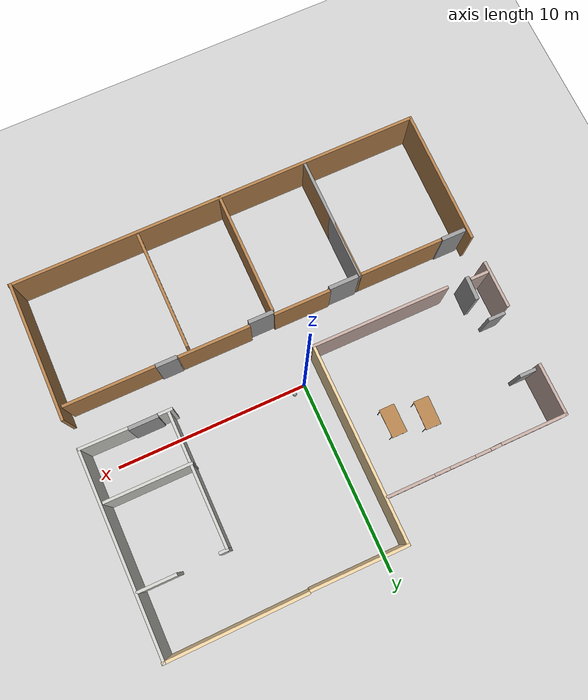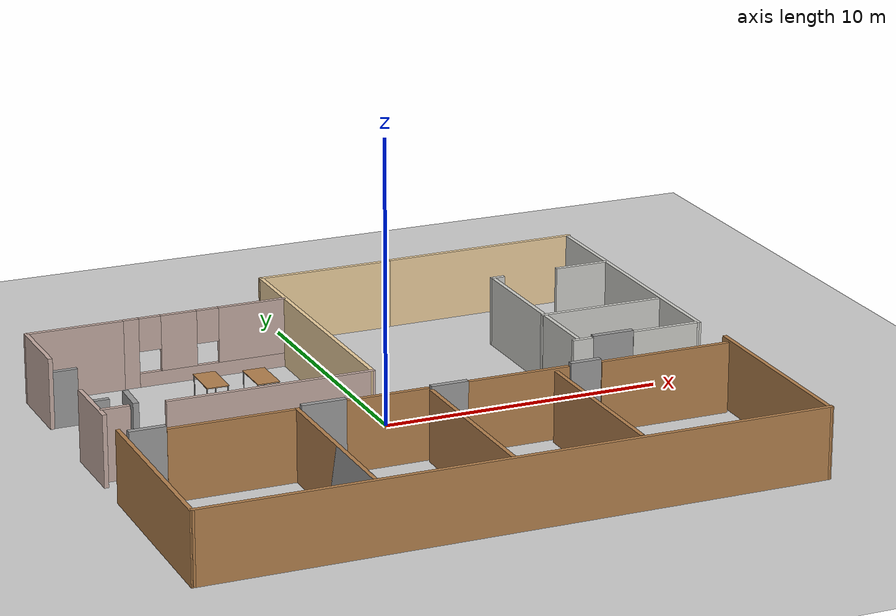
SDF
<sdf version="1.6">
 <world name="default">
  <model name="Building">
   <pose>0.405506 -0.396401 0 0 -0 0</pose>
   <link name="Door_12">
    <collision name="Door_12_Collision">
     <geometry><box><size>1.264 0.2 2.6</size></box></geometry>
     <pose>0 0 1.3 0 -0 0</pose>
    </collision>
    <visual name="Door_12_Visual">
     <pose>0 0 1.3 0 -0 0</pose>
     <geometry><box><size>1.264 0.2 2.6</size></box></geometry>
     <material>
      <script><uri>file://media/materials/scripts/gazebo.material</uri><name>Gazebo/Grey</name></script>
     </material>
    </visual>
    <pose>-9.9622 -3.0454 0 0 -0 0</pose>
   </link>
   <link name="Door_13">
    <collision name="Door_13_Collision">
     <geometry><box><size>1.224 0.2 2.6</size></box></geometry>
     <pose>0 0 1.3 0 -0 0</pose>
    </collision>
    <visual name="Door_13_Visual">
     <pose>0 0 1.3 0 -0 0</pose>
     <geometry><box><size>1.224 0.2 2.6</size></box></geometry>
     <material>
      <script><uri>file://media/materials/scripts/gazebo.material</uri><name>Gazebo/Grey</name></script>
     </material>
    </visual>
    <pose>-9.53741 -0.213505 0 0 0 -1.61176</pose>
   </link>
   <link name="Door_14">
    <collision name="Door_14_Collision">
     <geometry><box><size>0.9 0.17 2</size></box></geometry>
     <pose>0 0 1 0 -0 0</pose>
    </collision>
    <visual name="Door_14_Visual">
     <pose>0 0 1 0 -0 0</pose>
     <geometry><box><size>0.9 0.17 2</size></box></geometry>
     <material>
      <script><uri>file://media/materials/scripts/gazebo.material</uri><name>Gazebo/Grey</name></script>
     </material>
    </visual>
    <pose>-10.2656 4.56025 0 0 -0 0</pose>
   </link>
   <link name="Door_15">
    <collision name="Door_15_Collision">
     <geometry><box><size>0.9 0.17 2</size></box></geometry>
     <pose>0 0 1 0 -0 0</pose>
    </collision>
    <visual name="Door_15_Visual">
     <pose>0 0 1 0 -0 0</pose>
     <geometry><box><size>0.9 0.17 2</size></box></geometry>
     <material>
      <script><uri>file://media/materials/scripts/gazebo.material</uri><name>Gazebo/Grey</name></script>
     </material>
    </visual>
    <pose>-10.1847 1.44517 0 0 -0 0</pose>
   </link>
   <link name="Door_16">
    <collision name="Door_16_Collision">
     <geometry><box><size>1.507 0.2 2.55</size></box></geometry>
     <pose>0 0 1.275 0 -0 0</pose>
    </collision>
    <visual name="Door_16_Visual">
     <pose>0 0 1.275 0 -0 0</pose>
     <geometry><box><size>1.507 0.2 2.55</size></box></geometry>
     <material>
      <script><uri>file://media/materials/scripts/gazebo.material</uri><name>Gazebo/Grey</name></script>
     </material>
    </visual>
    <pose>7.4337 -0.698972 0 0 -0 0</pose>
   </link>
   <link name="Door_5">
    <collision name="Door_5_Collision">
     <geometry><box><size>1.102 0.2 2.6</size></box></geometry>
     <pose>0 0 1.3 0 -0 0</pose>
    </collision>
    <visual name="Door_5_Visual">
     <pose>0 0 1.3 0 -0 0</pose>
     <geometry><box><size>1.102 0.2 2.6</size></box></geometry>
     <material>
      <script><uri>file://media/materials/scripts/gazebo.material</uri><name>Gazebo/Grey</name></script>
     </material>
    </visual>
    <pose>5.33001 -2.92403 0 0 -0 0</pose>
   </link>
   <link name="Door_6">
    <collision name="Door_6_Collision">
     <geometry><box><size>1.30456 0.2 2.6</size></box></geometry>
     <pose>0 0 1.3 0 -0 0</pose>
    </collision>
    <visual name="Door_6_Visual">
     <pose>0 0 1.3 0 -0 0</pose>
     <geometry><box><size>1.30456 0.2 2.6</size></box></geometry>
     <material>
      <script><uri>file://media/materials/scripts/gazebo.material</uri><name>Gazebo/Grey</name></script>
     </material>
    </visual>
    <pose>0.353974 -3.08585 0 0 -0 0</pose>
   </link>
   <link name="Door_7">
    <collision name="Door_7_Collision">
     <geometry><box><size>1.54729 0.2 2.6</size></box></geometry>
     <pose>0 0 1.3 0 -0 0</pose>
    </collision>
    <visual name="Door_7_Visual">
     <pose>0 0 1.3 0 -0 0</pose>
     <geometry><box><size>1.54729 0.2 2.6</size></box></geometry>
     <material>
      <script><uri>file://media/materials/scripts/gazebo.material</uri><name>Gazebo/Grey</name></script>
     </material>
    </visual>
    <pose>-4.01523 -3.0454 0 0 -0 0</pose>
   </link>
   <link name="Wall_100">
    <collision name="Wall_100_Collision">
     <geometry><box><size>7 0.15 2.5</size></box></geometry>
     <pose>0 0 1.25 0 -0 0</pose>
    </collision>
    <visual name="Wall_100_Visual">
     <pose>0 0 1.25 0 -0 0</pose>
     <geometry><box><size>7 0.15 2.5</size></box></geometry>
     <material>
      <script><uri>file://media/materials/scripts/gazebo.material</uri><name>Gazebo/CeilingTiled</name></script>
      <ambient>1 1 1 1</ambient>
     </material>
     <meta><layer>0</layer></meta>
    </visual>
    <pose>6.16803 2.83366 0 0 0 -1.5708</pose>
   </link>
   <link name="Wall_107">
    <collision name="Wall_107_Collision">
     <geometry><box><size>4.75 0.15 2.5</size></box></geometry>
     <pose>0 0 1.25 0 -0 0</pose>
    </collision>
    <visual name="Wall_107_Visual">
     <pose>0 0 1.25 0 -0 0</pose>
     <geometry><box><size>4.75 0.15 2.5</size></box></geometry>
     <material>
      <script><uri>file://media/materials/scripts/gazebo.material</uri><name>Gazebo/Wood</name></script>
      <ambient>0.603922 0.4 0.298039 1</ambient>
     </material>
     <meta><layer>0</layer></meta>
    </visual>
    <pose>8.26901 -2.96448 0 0 -0 3.14159</pose>
   </link>
   <link name="Wall_109">
    <collision name="Wall_109_Collision">
     <geometry><box><size>3.75 0.15 2.5</size></box></geometry>
     <pose>0 0 1.25 0 -0 0</pose>
    </collision>
    <visual name="Wall_109_Visual">
     <pose>0 0 1.25 0 -0 0</pose>
     <geometry><box><size>3.75 0.15 2.5</size></box></geometry>
     <material>
      <script><uri>file://media/materials/scripts/gazebo.material</uri><name>Gazebo/Wood</name></script>
      <ambient>0.603922 0.4 0.298039 1</ambient>
     </material>
     <meta><layer>0</layer></meta>
    </visual>
    <pose>2.86976 -2.92403 0 0 -0 3.14159</pose>
   </link>
   <link name="Wall_114">
    <collision name="Wall_114_Collision">
     <geometry><box><size>3 0.15 2.5</size></box></geometry>
     <pose>0 0 1.25 0 -0 0</pose>
    </collision>
    <visual name="Wall_114_Visual">
     <pose>0 0 1.25 0 -0 0</pose>
     <geometry><box><size>3 0.15 2.5</size></box></geometry>
     <material>
      <script><uri>file://media/materials/scripts/gazebo.material</uri><name>Gazebo/Wood</name></script>
      <ambient>0.603922 0.4 0.298039 1</ambient>
     </material>
     <meta><layer>0</layer></meta>
    </visual>
    <pose>-1.779 -2.96448 0 0 -0 3.14159</pose>
   </link>
   <link name="Wall_116">
    <collision name="Wall_116_Collision">
     <geometry><box><size>4.5 0.15 2.5</size></box></geometry>
     <pose>0 0 1.25 0 -0 0</pose>
    </collision>
    <visual name="Wall_116_Visual">
     <pose>0 0 1.25 0 -0 0</pose>
     <geometry><box><size>4.5 0.15 2.5</size></box></geometry>
     <material>
      <script><uri>file://media/materials/scripts/gazebo.material</uri><name>Gazebo/Wood</name></script>
      <ambient>0.603922 0.4 0.298039 1</ambient>
     </material>
     <meta><layer>0</layer></meta>
    </visual>
    <pose>-7.08148 -3.07404 0 0 -0 3.14159</pose>
   </link>
   <link name="Wall_51">
    <collision name="Wall_51_Collision">
     <geometry><box><size>7.12896 0.15 2.5</size></box></geometry>
     <pose>0 0 1.25 0 -0 0</pose>
    </collision>
    <visual name="Wall_51_Visual">
     <pose>0 0 1.25 0 -0 0</pose>
     <geometry><box><size>7.12896 0.15 2.5</size></box></geometry>
     <material>
      <script><uri>file://media/materials/scripts/gazebo.material</uri><name>Gazebo/Wood</name></script>
      <ambient>0.603922 0.4 0.298039 1</ambient>
     </material>
     <meta><layer>0</layer></meta>
    </visual>
    <pose>-10.8 -6.10067 0 0 0 -1.58239</pose>
   </link>
   <link name="Wall_52">
    <collision name="Wall_52_Collision">
     <geometry><box><size>21.75 0.15 2.5</size></box></geometry>
     <pose>0 0 1.25 0 -0 0</pose>
    </collision>
    <visual name="Wall_52_Visual">
     <pose>0 0 1.25 0 -0 0</pose>
     <geometry><box><size>21.75 0.15 2.5</size></box></geometry>
     <material>
      <script><uri>file://media/materials/scripts/gazebo.material</uri><name>Gazebo/Wood</name></script>
      <ambient>0.603922 0.4 0.298039 1</ambient>
     </material>
     <meta><layer>0</layer></meta>
    </visual>
    <pose>1.3e-05 -9.58992 0 0 -0 0</pose>
   </link>
   <link name="Wall_53">
    <collision name="Wall_53_Collision">
     <geometry><box><size>7.33863 0.15 2.5</size></box></geometry>
     <pose>0 0 1.25 0 -0 0</pose>
    </collision>
    <visual name="Wall_53_Visual">
     <pose>0 0 1.25 0 -0 0</pose>
     <geometry><box><size>7.33863 0.15 2.5</size></box></geometry>
     <material>
      <script><uri>file://media/materials/scripts/gazebo.material</uri><name>Gazebo/Wood</name></script>
      <ambient>0.603922 0.4 0.298039 1</ambient>
     </material>
     <meta><layer>0</layer></meta>
    </visual>
    <pose>10.8 -5.99583 0 0 -0 1.55954</pose>
   </link>
   <link name="Wall_68">
    <collision name="Wall_68_Collision">
     <geometry><box><size>6.5 0.15 2.5</size></box></geometry>
     <pose>0 0 1.25 0 -0 0</pose>
    </collision>
    <visual name="Wall_68_Visual">
     <pose>0 0 1.25 0 -0 0</pose>
     <geometry><box><size>6.5 0.15 2.5</size></box></geometry>
     <material>
      <script><uri>file://media/materials/scripts/gazebo.material</uri><name>Gazebo/Grey</name></script>
      <ambient>1 1 1 1</ambient>
     </material>
     <meta><layer>0</layer></meta>
    </visual>
    <pose>-4.90648 -6.24904 0 0 0 -1.5708</pose>
   </link>
   <link name="Wall_69">
    <collision name="Wall_69_Collision">
     <geometry><box><size>6.5 0.15 2.5</size></box></geometry>
     <pose>0 0 1.25 0 -0 0</pose>
    </collision>
    <visual name="Wall_69_Visual">
     <pose>0 0 1.25 0 -0 0</pose>
     <geometry><box><size>6.5 0.15 2.5</size></box></geometry>
     <material>
      <script><uri>file://media/materials/scripts/gazebo.material</uri><name>Gazebo/Wood</name></script>
      <ambient>0.603922 0.4 0.298039 1</ambient>
     </material>
     <meta><layer>0</layer></meta>
    </visual>
    <pose>-4.90648 -6.24904 0 0 -0 1.5708</pose>
   </link>
   <link name="Wall_71">
    <collision name="Wall_71_Collision">
     <geometry><box><size>6.5 0.15 2.5</size></box></geometry>
     <pose>0 0 1.25 0 -0 0</pose>
    </collision>
    <visual name="Wall_71_Visual">
     <pose>0 0 1.25 0 -0 0</pose>
     <geometry><box><size>6.5 0.15 2.5</size></box></geometry>
     <material>
      <script><uri>file://media/materials/scripts/gazebo.material</uri><name>Gazebo/Wood</name></script>
      <ambient>0.603922 0.4 0.298039 1</ambient>
     </material>
     <meta><layer>0</layer></meta>
    </visual>
    <pose>-0.300474 -6.39572 0 0 -0 1.5708</pose>
   </link>
   <link name="Wall_73">
    <collision name="Wall_73_Collision">
     <geometry><box><size>6.25 0.15 2.5</size></box></geometry>
     <pose>0 0 1.25 0 -0 0</pose>
    </collision>
    <visual name="Wall_73_Visual">
     <pose>0 0 1.25 0 -0 0</pose>
     <geometry><box><size>6.25 0.15 2.5</size></box></geometry>
     <material>
      <script><uri>file://media/materials/scripts/gazebo.material</uri><name>Gazebo/Wood</name></script>
      <ambient>0.603922 0.4 0.298039 1</ambient>
     </material>
     <meta><layer>0</layer></meta>
    </visual>
    <pose>4.14462 -6.3397 0 0 -0 1.5708</pose>
   </link>
   <link name="Wall_75">
    <collision name="Wall_75_Collision">
     <geometry><box><size>10.5 0.15 2.5</size></box></geometry>
     <pose>0 0 1.25 0 -0 0</pose>
    </collision>
    <visual name="Wall_75_Visual">
     <pose>0 0 1.25 0 -0 0</pose>
     <geometry><box><size>10.5 0.15 2.5</size></box></geometry>
     <material>
      <script><uri>file://media/materials/scripts/gazebo.material</uri><name>Gazebo/CeilingTiled</name></script>
      <ambient>1 1 1 1</ambient>
     </material>
     <meta><layer>0</layer></meta>
    </visual>
    <pose>10.6614 4.41494 0 0 -0 1.5708</pose>
   </link>
   <link name="Wall_76">
    <collision name="Wall_76_Collision">
     <geometry><box><size>7.24417 0.15 2.5</size></box></geometry>
     <pose>0 0 1.25 0 -0 0</pose>
    </collision>
    <visual name="Wall_76_Visual">
     <pose>0 0 1.25 0 -0 0</pose>
     <geometry><box><size>7.24417 0.15 2.5</size></box></geometry>
     <material>
      <script><uri>file://media/materials/scripts/gazebo.material</uri><name>Gazebo/Grey</name></script>
      <ambient>0.921569 0.807843 0.615686 1</ambient>
     </material>
     <meta><layer>0</layer></meta>
    </visual>
    <pose>7.15502 9.54948 0 0 0 -3.13019</pose>
   </link>
   <link name="Wall_78">
    <collision name="Wall_78_Collision">
     <geometry><box><size>5 0.15 2.5</size></box></geometry>
     <pose>0 0 1.25 0 -0 0</pose>
    </collision>
    <visual name="Wall_78_Visual">
     <pose>0 0 1.25 0 -0 0</pose>
     <geometry><box><size>5 0.15 2.5</size></box></geometry>
     <material>
      <script><uri>file://media/materials/scripts/gazebo.material</uri><name>Gazebo/Grey</name></script>
      <ambient>0.921569 0.807843 0.615686 1</ambient>
     </material>
     <meta><layer>0</layer></meta>
    </visual>
    <pose>1.03576 9.45672 0 0 -0 3.14159</pose>
   </link>
   <link name="Wall_79">
    <collision name="Wall_79_Collision">
     <geometry><box><size>10.3677 0.15 2.5</size></box></geometry>
     <pose>0 0 1.25 0 -0 0</pose>
    </collision>
    <visual name="Wall_79_Visual">
     <pose>0 0 1.25 0 -0 0</pose>
     <geometry><box><size>10.3677 0.15 2.5</size></box></geometry>
     <material>
      <script><uri>file://media/materials/scripts/gazebo.material</uri><name>Gazebo/Grey</name></script>
      <ambient>0.921569 0.807843 0.615686 1</ambient>
     </material>
     <meta><layer>0</layer></meta>
    </visual>
    <pose>-1.37786 4.34787 0 0 0 -1.56857</pose>
   </link>
   <link name="Wall_80">
    <collision name="Wall_80_Collision">
     <geometry><box><size>7.25 0.15 2.5</size></box></geometry>
     <pose>0 0 1.25 0 -0 0</pose>
    </collision>
    <visual name="Wall_80_Visual">
     <pose>0 0 1.25 0 -0 0</pose>
     <geometry><box><size>7.25 0.15 2.5</size></box></geometry>
     <material>
      <script><uri>file://media/materials/scripts/gazebo.material</uri><name>Gazebo/Grey</name></script>
      <ambient>0.760784 0.662745 0.627451 1</ambient>
     </material>
     <meta><layer>0</layer></meta>
    </visual>
    <pose>-4.91649 -0.760978 0 0 -0 3.14159</pose>
   </link>
   <link name="Wall_82">
    <collision name="Wall_82_Collision">
     <geometry><box><size>1 0.15 2.5</size></box></geometry>
     <pose>0 0 1.25 0 -0 0</pose>
    </collision>
    <visual name="Wall_82_Visual">
     <pose>0 0 1.25 0 -0 0</pose>
     <geometry><box><size>1 0.15 2.5</size></box></geometry>
     <material>
      <script><uri>file://media/materials/scripts/gazebo.material</uri><name>Gazebo/Grey</name></script>
      <ambient>0.760784 0.662745 0.627451 1</ambient>
     </material>
     <meta><layer>0</layer></meta>
    </visual>
    <pose>-10.2186 -0.659725 0 0 -0 3.14159</pose>
   </link>
   <link name="Wall_84">
    <collision name="Wall_84_Collision">
     <geometry><box><size>2.5 0.15 2.5</size></box></geometry>
     <pose>0 0 1.25 0 -0 0</pose>
    </collision>
    <visual name="Wall_84_Visual">
     <pose>0 0 1.25 0 -0 0</pose>
     <geometry><box><size>2.5 0.15 2.5</size></box></geometry>
     <material>
      <script><uri>file://media/materials/scripts/gazebo.material</uri><name>Gazebo/Grey</name></script>
      <ambient>0.760784 0.662745 0.627451 1</ambient>
     </material>
     <meta><layer>0</layer></meta>
    </visual>
    <pose>-10.7394 0.072092 0 0 -0 1.5708</pose>
   </link>
   <link name="Wall_86">
    <collision name="Wall_86_Collision">
     <geometry><box><size>2.75 0.15 2.5</size></box></geometry>
     <pose>0 0 1.25 0 -0 0</pose>
    </collision>
    <visual name="Wall_86_Visual">
     <pose>0 0 1.25 0 -0 0</pose>
     <geometry><box><size>2.75 0.15 2.5</size></box></geometry>
     <material>
      <script><uri>file://media/materials/scripts/gazebo.material</uri><name>Gazebo/Grey</name></script>
      <ambient>0.760784 0.662745 0.627451 1</ambient>
     </material>
     <meta><layer>0</layer></meta>
    </visual>
    <pose>-10.7595 5.80878 0 0 -0 1.5708</pose>
   </link>
   <link name="Wall_87">
    <collision name="Wall_87_Collision">
     <geometry><box><size>3.5 0.15 2.5</size></box></geometry>
     <pose>0 0 1.25 0 -0 0</pose>
    </collision>
    <visual name="Wall_87_Visual">
     <pose>0 0 1.25 0 -0 0</pose>
     <geometry><box><size>3.5 0.15 2.5</size></box></geometry>
     <material>
      <script><uri>file://media/materials/scripts/gazebo.material</uri><name>Gazebo/Grey</name></script>
      <ambient>0.760784 0.662745 0.627451 1</ambient>
     </material>
     <meta><layer>0</layer></meta>
    </visual>
    <pose>-9.08453 7.10878 0 0 -0 0</pose>
   </link>
   <link name="Wall_89">
    <pose>-4.39819 7.12354 0 0 -0 0</pose>
    <visual name="Wall_89_Visual_0">
     <pose>-2.69184 0 1.25 0 -0 0</pose>
     <geometry><box><size>0.61631 0.15 2.5</size></box></geometry>
     <material>
      <script><uri>file://media/materials/scripts/gazebo.material</uri><name>Gazebo/Grey</name></script>
      <ambient>0.760784 0.662745 0.627451 1</ambient>
     </material>
     <meta><layer>0</layer></meta>
    </visual>
    <collision name="Wall_89_Collision_0">
     <geometry><box><size>0.61631 0.15 2.5</size></box></geometry>
     <pose>-2.69184 0 1.25 0 -0 0</pose>
    </collision>
    <visual name="Wall_89_Visual_1">
     <pose>0.308155 0 0.25 0 -0 0</pose>
     <geometry><box><size>5.38369 0.15 0.5</size></box></geometry>
     <material>
      <script><uri>file://media/materials/scripts/gazebo.material</uri><name>Gazebo/Grey</name></script>
      <ambient>0.760784 0.662745 0.627451 1</ambient>
     </material>
     <meta><layer>0</layer></meta>
    </visual>
    <collision name="Wall_89_Collision_1">
     <geometry><box><size>5.38369 0.15 0.5</size></box></geometry>
     <pose>0.308155 0 0.25 0 -0 0</pose>
    </collision>
    <visual name="Wall_89_Visual_2">
     <pose>-0.931845 0 1.5 0 -0 0</pose>
     <geometry><box><size>1.30369 0.15 2</size></box></geometry>
     <material>
      <script><uri>file://media/materials/scripts/gazebo.material</uri><name>Gazebo/Grey</name></script>
      <ambient>0.760784 0.662745 0.627451 1</ambient>
     </material>
     <meta><layer>0</layer></meta>
    </visual>
    <collision name="Wall_89_Collision_2">
     <geometry><box><size>1.30369 0.15 2</size></box></geometry>
     <pose>-0.931845 0 1.5 0 -0 0</pose>
    </collision>
    <visual name="Wall_89_Visual_3">
     <pose>1.76 0 1.5 0 -0 0</pose>
     <geometry><box><size>2.48 0.15 2</size></box></geometry>
     <material>
      <script><uri>file://media/materials/scripts/gazebo.material</uri><name>Gazebo/Grey</name></script>
      <ambient>0.760784 0.662745 0.627451 1</ambient>
     </material>
     <meta><layer>0</layer></meta>
    </visual>
    <collision name="Wall_89_Collision_3">
     <geometry><box><size>2.48 0.15 2</size></box></geometry>
     <pose>1.76 0 1.5 0 -0 0</pose>
    </collision>
    <visual name="Wall_89_Visual_4">
     <pose>-1.98369 0 1.9 0 -0 0</pose>
     <geometry><box><size>0.8 0.15 1.2</size></box></geometry>
     <material>
      <script><uri>file://media/materials/scripts/gazebo.material</uri><name>Gazebo/Grey</name></script>
      <ambient>0.760784 0.662745 0.627451 1</ambient>
     </material>
     <meta><layer>0</layer></meta>
    </visual>
    <collision name="Wall_89_Collision_4">
     <geometry><box><size>0.8 0.15 1.2</size></box></geometry>
     <pose>-1.98369 0 1.9 0 -0 0</pose>
    </collision>
    <visual name="Wall_89_Visual_5">
     <pose>0.119999 0 1.9 0 -0 0</pose>
     <geometry><box><size>0.8 0.15 1.2</size></box></geometry>
     <material>
      <script><uri>file://media/materials/scripts/gazebo.material</uri><name>Gazebo/Grey</name></script>
      <ambient>0.760784 0.662745 0.627451 1</ambient>
     </material>
     <meta><layer>0</layer></meta>
    </visual>
    <collision name="Wall_89_Collision_5">
     <geometry><box><size>0.8 0.15 1.2</size></box></geometry>
     <pose>0.119999 0 1.9 0 -0 0</pose>
    </collision>
   </link>
   <link name="Wall_91">
    <collision name="Wall_91_Collision">
     <geometry><box><size>2 0.15 2.5</size></box></geometry>
     <pose>0 0 1.25 0 -0 0</pose>
    </collision>
    <visual name="Wall_91_Visual">
     <pose>0 0 1.25 0 -0 0</pose>
     <geometry><box><size>2 0.15 2.5</size></box></geometry>
     <material>
      <script><uri>file://media/materials/scripts/gazebo.material</uri><name>Gazebo/CeilingTiled</name></script>
      <ambient>1 1 1 1</ambient>
     </material>
     <meta><layer>0</layer></meta>
    </visual>
    <pose>9.65597 6.319 0 0 -0 3.14159</pose>
   </link>
   <link name="Wall_93">
    <collision name="Wall_93_Collision">
     <geometry><box><size>4.5 0.15 2.5</size></box></geometry>
     <pose>0 0 1.25 0 -0 0</pose>
    </collision>
    <visual name="Wall_93_Visual">
     <pose>0 0 1.25 0 -0 0</pose>
     <geometry><box><size>4.5 0.15 2.5</size></box></geometry>
     <material>
      <script><uri>file://media/materials/scripts/gazebo.material</uri><name>Gazebo/CeilingTiled</name></script>
      <ambient>1 1 1 1</ambient>
     </material>
     <meta><layer>0</layer></meta>
    </visual>
    <pose>8.3054 1.99458 0 0 -0 3.14159</pose>
   </link>
   <link name="Wall_95">
    <collision name="Wall_95_Collision">
     <geometry><box><size>2.56042 0.15 2.5</size></box></geometry>
     <pose>0 0 1.25 0 -0 0</pose>
    </collision>
    <visual name="Wall_95_Visual">
     <pose>0 0 1.25 0 -0 0</pose>
     <geometry><box><size>2.56042 0.15 2.5</size></box></geometry>
     <material>
      <script><uri>file://media/materials/scripts/gazebo.material</uri><name>Gazebo/CeilingTiled</name></script>
      <ambient>1 1 1 1</ambient>
     </material>
     <meta><layer>0</layer></meta>
    </visual>
    <pose>9.45625 -0.750464 0 0 -0 3.13363</pose>
   </link>
   <link name="Wall_97">
    <collision name="Wall_97_Collision">
     <geometry><box><size>0.75 0.15 2.5</size></box></geometry>
     <pose>0 0 1.25 0 -0 0</pose>
    </collision>
    <visual name="Wall_97_Visual">
     <pose>0 0 1.25 0 -0 0</pose>
     <geometry><box><size>0.75 0.15 2.5</size></box></geometry>
     <material>
      <script><uri>file://media/materials/scripts/gazebo.material</uri><name>Gazebo/CeilingTiled</name></script>
      <ambient>1 1 1 1</ambient>
     </material>
     <meta><layer>0</layer></meta>
    </visual>
    <pose>6.29848 -0.740864 0 0 -0 3.14159</pose>
   </link>
   <link name="Wall_99">
    <collision name="Wall_99_Collision">
     <geometry><box><size>0.5 0.15 2.5</size></box></geometry>
     <pose>0 0 1.25 0 -0 0</pose>
    </collision>
    <visual name="Wall_99_Visual">
     <pose>0 0 1.25 0 -0 0</pose>
     <geometry><box><size>0.5 0.15 2.5</size></box></geometry>
     <material>
      <script><uri>file://media/materials/scripts/gazebo.material</uri><name>Gazebo/CeilingTiled</name></script>
      <ambient>1 1 1 1</ambient>
     </material>
     <meta><layer>0</layer></meta>
    </visual>
    <pose>6.34303 6.25866 0 0 -0 3.14159</pose>
   </link>
   <static>1</static>
  </model>
  <model name="table">
   <static>1</static>
   <link name="link">
    <collision name="surface">
     <pose>0 0 1 0 -0 0</pose>
     <geometry><box><size>1.5 0.8 0.03</size></box></geometry>
     <surface><friction><ode><mu>0.6</mu><mu2>0.6</mu2></ode></friction></surface>
    </collision>
    <visual name="visual1">
     <pose>0 0 1 0 -0 0</pose>
     <geometry><box><size>1.5 0.8 0.03</size></box></geometry>
     <material>
      <script><uri>file://media/materials/scripts/gazebo.material</uri><name>Gazebo/Wood</name></script>
     </material>
    </visual>
    <collision name="front_left_leg">
     <pose>0.68 0.38 0.5 0 -0 0</pose>
     <geometry><cylinder><radius>0.02</radius><length>1</length></cylinder></geometry>
    </collision>
    <visual name="front_left_leg">
     <pose>0.68 0.38 0.5 0 -0 0</pose>
     <geometry><cylinder><radius>0.02</radius><length>1</length></cylinder></geometry>
     <material>
      <script><uri>file://media/materials/scripts/gazebo.material</uri><name>Gazebo/Grey</name></script>
     </material>
    </visual>
    <collision name="front_right_leg">
     <pose>0.68 -0.38 0.5 0 -0 0</pose>
     <geometry><cylinder><radius>0.02</radius><length>1</length></cylinder></geometry>
    </collision>
    <visual name="front_right_leg">
     <pose>0.68 -0.38 0.5 0 -0 0</pose>
     <geometry><cylinder><radius>0.02</radius><length>1</length></cylinder></geometry>
     <material>
      <script><uri>file://media/materials/scripts/gazebo.material</uri><name>Gazebo/Grey</name></script>
     </material>
    </visual>
    <collision name="back_right_leg">
     <pose>-0.68 -0.38 0.5 0 -0 0</pose>
     <geometry><cylinder><radius>0.02</radius><length>1</length></cylinder></geometry>
    </collision>
    <visual name="back_right_leg">
     <pose>-0.68 -0.38 0.5 0 -0 0</pose>
     <geometry><cylinder><radius>0.02</radius><length>1</length></cylinder></geometry>
     <material>
      <script><uri>file://media/materials/scripts/gazebo.material</uri><name>Gazebo/Grey</name></script>
     </material>
    </visual>
    <collision name="back_left_leg">
     <pose>-0.68 0.38 0.5 0 -0 0</pose>
     <geometry><cylinder><radius>0.02</radius><length>1</length></cylinder></geometry>
    </collision>
    <visual name="back_left_leg">
     <pose>-0.68 0.38 0.5 0 -0 0</pose>
     <geometry><cylinder><radius>0.02</radius><length>1</length></cylinder></geometry>
     <material>
      <script><uri>file://media/materials/scripts/gazebo.material</uri><name>Gazebo/Grey</name></script>
     </material>
    </visual>
   </link>
   <pose>-3.11227 3.51929 0 0 0 -1.5691</pose>
  </model>
  <model name="table_clone">
   <static>1</static>
   <link name="link">
    <collision name="surface">
     <pose>0 0 1 0 -0 0</pose>
     <geometry><box><size>1.5 0.8 0.03</size></box></geometry>
     <surface><friction><ode><mu>0.6</mu><mu2>0.6</mu2></ode></friction></surface>
    </collision>
    <visual name="visual1">
     <pose>0 0 1 0 -0 0</pose>
     <geometry><box><size>1.5 0.8 0.03</size></box></geometry>
     <material>
      <script><uri>file://media/materials/scripts/gazebo.material</uri><name>Gazebo/Wood</name></script>
     </material>
    </visual>
    <collision name="front_left_leg">
     <pose>0.68 0.38 0.5 0 -0 0</pose>
     <geometry><cylinder><radius>0.02</radius><length>1</length></cylinder></geometry>
    </collision>
    <visual name="front_left_leg">
     <pose>0.68 0.38 0.5 0 -0 0</pose>
     <geometry><cylinder><radius>0.02</radius><length>1</length></cylinder></geometry>
     <material>
      <script><uri>file://media/materials/scripts/gazebo.material</uri><name>Gazebo/Grey</name></script>
     </material>
    </visual>
    <collision name="front_right_leg">
     <pose>0.68 -0.38 0.5 0 -0 0</pose>
     <geometry><cylinder><radius>0.02</radius><length>1</length></cylinder></geometry>
    </collision>
    <visual name="front_right_leg">
     <pose>0.68 -0.38 0.5 0 -0 0</pose>
     <geometry><cylinder><radius>0.02</radius><length>1</length></cylinder></geometry>
     <material>
      <script><uri>file://media/materials/scripts/gazebo.material</uri><name>Gazebo/Grey</name></script>
     </material>
    </visual>
    <collision name="back_right_leg">
     <pose>-0.68 -0.38 0.5 0 -0 0</pose>
     <geometry><cylinder><radius>0.02</radius><length>1</length></cylinder></geometry>
    </collision>
    <visual name="back_right_leg">
     <pose>-0.68 -0.38 0.5 0 -0 0</pose>
     <geometry><cylinder><radius>0.02</radius><length>1</length></cylinder></geometry>
     <material>
      <script><uri>file://media/materials/scripts/gazebo.material</uri><name>Gazebo/Grey</name></script>
     </material>
    </visual>
    <collision name="back_left_leg">
     <pose>-0.68 0.38 0.5 0 -0 0</pose>
     <geometry><cylinder><radius>0.02</radius><length>1</length></cylinder></geometry>
    </collision>
    <visual name="back_left_leg">
     <pose>-0.68 0.38 0.5 0 -0 0</pose>
     <geometry><cylinder><radius>0.02</radius><length>1</length></cylinder></geometry>
     <material>
      <script><uri>file://media/materials/scripts/gazebo.material</uri><name>Gazebo/Grey</name></script>
     </material>
    </visual>
   </link>
   <pose>-4.79599 3.84583 0 0 0 -1.59841</pose>
  </model>
  <model name="ground_plane">
   <static>1</static>
   <link name="link">
    <collision name="collision">
     <geometry><plane><normal>0 0 1</normal><size>100 100</size></plane></geometry>
     <surface><friction><ode><mu>100</mu><mu2>50</mu2></ode></friction></surface>
    </collision>
    <visual name="visual">
     <cast_shadows>0</cast_shadows>
     <geometry><plane><normal>0 0 1</normal><size>100 100</size></plane></geometry>
     <material>
      <script><uri>file://media/materials/scripts/gazebo.material</uri><name>Gazebo/Grey</name></script>
     </material>
    </visual>
   </link>
   <pose>-3.8747 13.4824 0 0 -0 0</pose>
  </model>
  <model name="my_ball">
   <link name="my_ball::link_0">
    <inertial>
     <mass>1</mass>
     <inertia><ixx>0.1</ixx><ixy>0</ixy><ixz>0</ixz><iyy>0.1</iyy><iyz>0</iyz><izz>0.1</izz></inertia>
    </inertial>
    <gravity>0</gravity>
    <visual name="visual">
     <geometry><sphere><radius>0.1</radius></sphere></geometry>
     <material>
      <lighting>1</lighting>
      <script><uri>file://media/materials/scripts/gazebo.material</uri><name>Gazebo/Grey</name></script>
      <shader type="pixel"><normal_map>__default__</normal_map></shader>
      <ambient>1 1 1 1</ambient>
      <diffuse>1 1 1 1</diffuse>
      <specular>1 1 1 1</specular>
      <emissive>1 1 1 1</emissive>
     </material>
    </visual>
    <collision name="collision">
     <geometry><sphere><radius>0.1</radius></sphere></geometry>
     <surface>
      <friction>
       <ode><mu>1</mu><mu2>1</mu2><fdir1>0 0 0</fdir1><slip1>0</slip1><slip2>0</slip2></ode>
       <torsional>
        <coefficient>1</coefficient>
        <patch_radius>0</patch_radius>
        <surface_radius>0</surface_radius>
        <use_patch_radius>1</use_patch_radius>
        <ode><slip>0</slip></ode>
       </torsional>
      </friction>
      <bounce><restitution_coefficient>0</restitution_coefficient><threshold>1e+06</threshold></bounce>
      <contact>
       <collide_without_contact>0</collide_without_contact>
       <collide_without_contact_bitmask>1</collide_without_contact_bitmask>
       <collide_bitmask>1</collide_bitmask>
       <ode>
        <soft_cfm>0</soft_cfm>
        <soft_erp>0.2</soft_erp>
        <kp>1e+13</kp>
        <kd>1</kd>
        <max_vel>0.01</max_vel>
        <min_depth>0</min_depth>
       </ode>
       <bullet>
        <split_impulse>1</split_impulse>
        <split_impulse_penetration_threshold>-0.01</split_impulse_penetration_threshold>
        <soft_cfm>0</soft_cfm>
        <soft_erp>0.2</soft_erp>
        <kp>1e+13</kp>
        <kd>1</kd>
       </bullet>
      </contact>
     </surface>
    </collision>
   </link>
   <static>0</static>
   <pose>0.636538 0.260543 0.393176 0 -0 0</pose>
  </model>
 </world>
</sdf>
